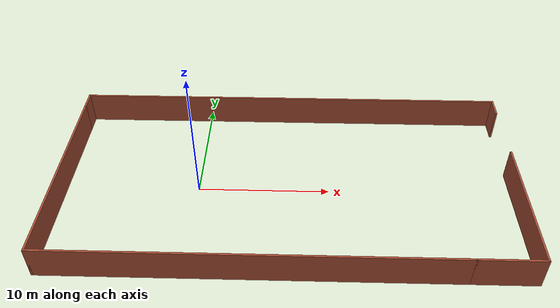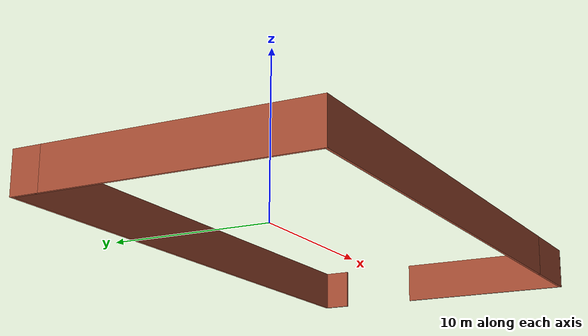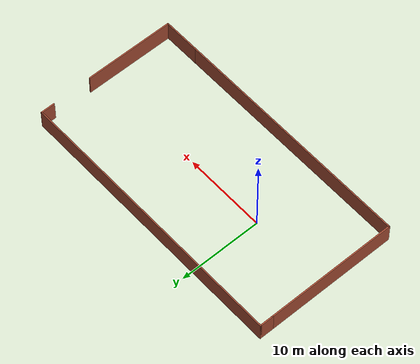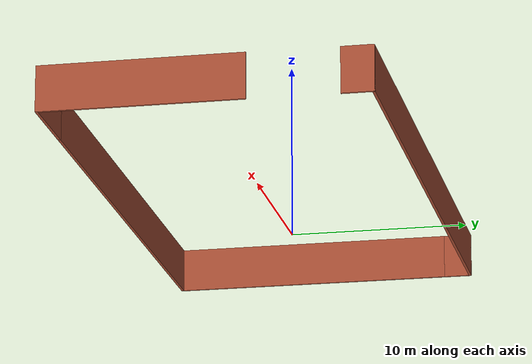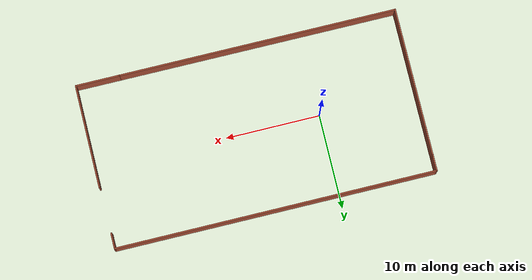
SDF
<?xml version='1.0'?>
<sdf version='1.6'>
  <model name='Building_brick_2'>
    <pose frame=''>6.86347 0.046159 0 0 -0 0</pose>
    <link name='Wall_1'>
      <collision name='Wall_1_Collision'>
        <geometry>
          <box>
            <size>16 0.15 2.5</size>
          </box>
        </geometry>
        <pose frame=''>0 0 1.25 0 -0 0</pose>
      </collision>
      <visual name='Wall_1_Visual'>
        <pose frame=''>0 0 1.25 0 -0 0</pose>
        <geometry>
          <box>
            <size>16 0.15 2.5</size>
          </box>
        </geometry>
        <material>
          <script>
            <uri>file://media/materials/scripts/gazebo.material</uri>
            <name>Gazebo/Bricks</name>
          </script>
          <ambient>1 1 1 1</ambient>
        </material>
      </visual>
      <pose frame=''>-17.1 -0.8 0 0 0 -1.5708</pose>
    </link>
    <link name='Wall_10'>
      <collision name='Wall_10_Collision'>
        <geometry>
          <box>
            <size>11 0.15 2.5</size>
          </box>
        </geometry>
        <pose frame=''>0 0 1.25 0 -0 0</pose>
      </collision>
      <visual name='Wall_10_Visual'>
        <pose frame=''>0 0 1.25 0 -0 0</pose>
        <geometry>
          <box>
            <size>11 0.15 2.5</size>
          </box>
        </geometry>
        <material>
          <script>
            <uri>file://media/materials/scripts/gazebo.material</uri>
            <name>Gazebo/Bricks</name>
          </script>
          <ambient>1 1 1 1</ambient>
        </material>
      </visual>
      <pose frame=''>17.1 -3.3 0 0 -0 1.5708</pose>
    </link>
    <link name='Wall_2'>
      <collision name='Wall_2_Collision'>
        <geometry>
          <box>
            <size>29.75 0.15 2.5</size>
          </box>
        </geometry>
        <pose frame=''>0 0 1.25 0 -0 0</pose>
      </collision>
      <visual name='Wall_2_Visual'>
        <pose frame=''>0 0 1.25 0 -0 0</pose>
        <geometry>
          <box>
            <size>29.75 0.15 2.5</size>
          </box>
        </geometry>
        <material>
          <script>
            <uri>file://media/materials/scripts/gazebo.material</uri>
            <name>Gazebo/Bricks</name>
          </script>
          <ambient>1 1 1 1</ambient>
        </material>
      </visual>
      <pose frame=''>-2.3 -8.725 0 0 -0 0</pose>
    </link>
    <link name='Wall_5'>
      <collision name='Wall_5_Collision'>
        <geometry>
          <box>
            <size>1.75 0.15 2.5</size>
          </box>
        </geometry>
        <pose frame=''>0 0 1.25 0 -0 0</pose>
      </collision>
      <visual name='Wall_5_Visual'>
        <pose frame=''>0 0 1.25 0 -0 0</pose>
        <geometry>
          <box>
            <size>1.75 0.15 2.5</size>
          </box>
        </geometry>
        <material>
          <script>
            <uri>file://media/materials/scripts/gazebo.material</uri>
            <name>Gazebo/Bricks</name>
          </script>
          <ambient>1 1 1 1</ambient>
        </material>
      </visual>
      <pose frame=''>-17.1 7.925 0 0 -0 1.5708</pose>
    </link>
    <link name='Wall_6'>
      <collision name='Wall_6_Collision'>
        <geometry>
          <box>
            <size>34.25 0.15 2.5</size>
          </box>
        </geometry>
        <pose frame=''>0 0 1.25 0 -0 0</pose>
      </collision>
      <visual name='Wall_6_Visual'>
        <pose frame=''>0 0 1.25 0 -0 0</pose>
        <geometry>
          <box>
            <size>34.25 0.15 2.5</size>
          </box>
        </geometry>
        <material>
          <script>
            <uri>file://media/materials/scripts/gazebo.material</uri>
            <name>Gazebo/Bricks</name>
          </script>
          <ambient>1 1 1 1</ambient>
        </material>
      </visual>
      <pose frame=''>-0.05 8.725 0 0 -0 0</pose>
    </link>
    <link name='Wall_7'>
      <collision name='Wall_7_Collision'>
        <geometry>
          <box>
            <size>1.75 0.15 2.5</size>
          </box>
        </geometry>
        <pose frame=''>0 0 1.25 0 -0 0</pose>
      </collision>
      <visual name='Wall_7_Visual'>
        <pose frame=''>0 0 1.25 0 -0 0</pose>
        <geometry>
          <box>
            <size>1.75 0.15 2.5</size>
          </box>
        </geometry>
        <material>
          <script>
            <uri>file://media/materials/scripts/gazebo.material</uri>
            <name>Gazebo/Bricks</name>
          </script>
          <ambient>1 1 1 1</ambient>
        </material>
      </visual>
      <pose frame=''>17 7.925 0 0 0 -1.5708</pose>
    </link>
    <link name='Wall_9'>
      <collision name='Wall_9_Collision'>
        <geometry>
          <box>
            <size>4.75 0.15 2.5</size>
          </box>
        </geometry>
        <pose frame=''>0 0 1.25 0 -0 0</pose>
      </collision>
      <visual name='Wall_9_Visual'>
        <pose frame=''>0 0 1.25 0 -0 0</pose>
        <geometry>
          <box>
            <size>4.75 0.15 2.5</size>
          </box>
        </geometry>
        <material>
          <script>
            <uri>file://media/materials/scripts/gazebo.material</uri>
            <name>Gazebo/Bricks</name>
          </script>
          <ambient>1 1 1 1</ambient>
        </material>
      </visual>
      <pose frame=''>14.8 -8.725 0 0 -0 0</pose>
    </link>
    <static>1</static>
  </model>
</sdf>
